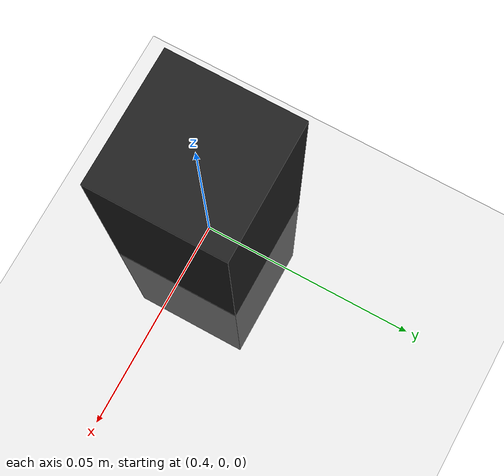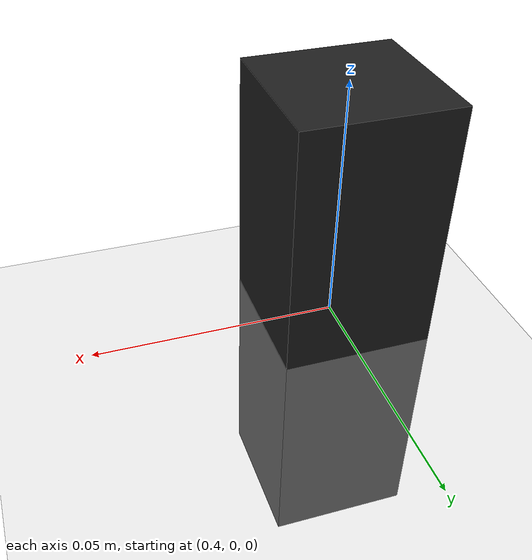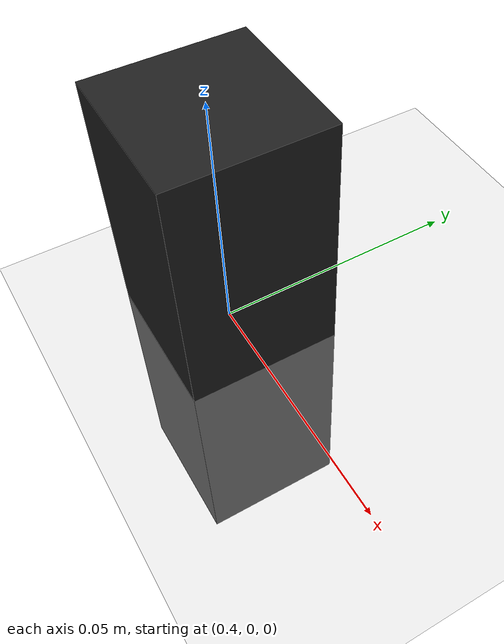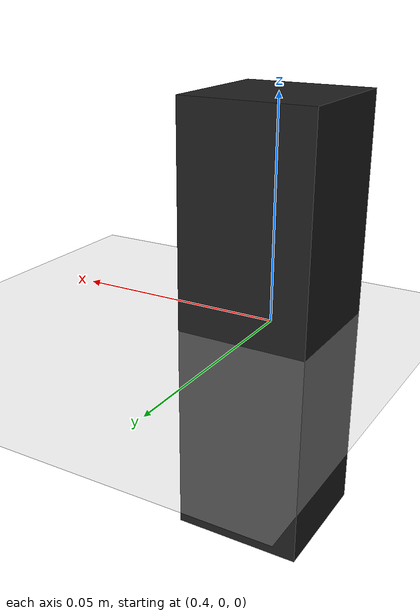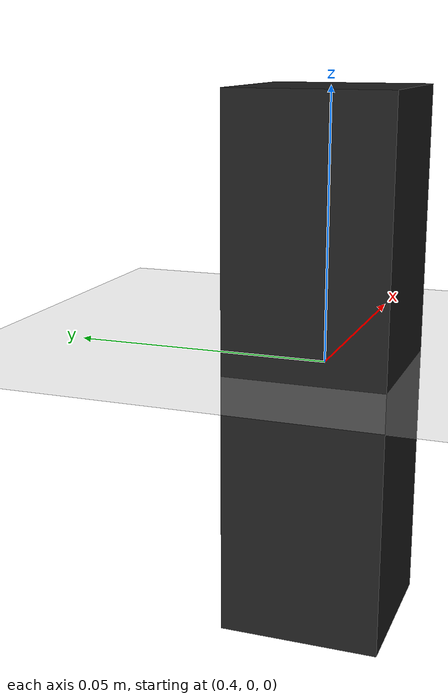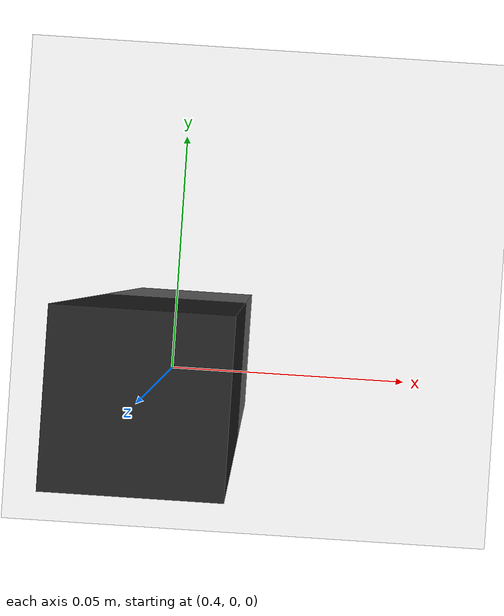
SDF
<sdf version="1.6">
 <world name="default">
  <light name="sun" type="directional">
   <pose>0 0 10 0 -0 0</pose>
   <diffuse>0.8 0.8 0.8 1</diffuse>
   <specular>0.2 0.2 0.2 1</specular>
   <attenuation>
    <range>1000</range>
    <constant>0.9</constant>
    <linear>0.01</linear>
    <quadratic>0.001</quadratic>
   </attenuation>
   <direction>-0.5 0.1 -0.9</direction>
  </light>
  <model name="ground_plane">
   <static>1</static>
   <link name="link">
    <collision name="collision">
     <geometry><plane><normal>0 0 1</normal><size>100 100</size></plane></geometry>
     <surface><friction><ode><mu>100</mu><mu2>50</mu2></ode></friction></surface>
    </collision>
    <visual name="visual">
     <cast_shadows>0</cast_shadows>
     <geometry><plane><normal>0 0 1</normal><size>100 100</size></plane></geometry>
     <material>
      <script><uri>file://media/materials/scripts/gazebo.material</uri><name>Gazebo/Grey</name></script>
     </material>
    </visual>
   </link>
  </model>
  <gravity>0 0 -9.8</gravity>
  <magnetic_field>6e-06 2.3e-05 -4.2e-05</magnetic_field>
  <atmosphere type="adiabatic"/>
  <physics name="default_physics" default="0" type="ode">
   <max_step_size>0.001</max_step_size>
   <real_time_factor>1</real_time_factor>
   <real_time_update_rate>1000</real_time_update_rate>
  </physics>
  <scene><ambient>0.4 0.4 0.4 1</ambient><background>0.7 0.7 0.7 1</background><shadows>1</shadows></scene>
  <spherical_coordinates>
   <surface_model>EARTH_WGS84</surface_model>
   <latitude_deg>0</latitude_deg>
   <longitude_deg>0</longitude_deg>
   <elevation>0</elevation>
   <heading_deg>0</heading_deg>
  </spherical_coordinates>
  <model name="box_black">
   <static>0</static>
   <link name="link">
    <inertial>
     <mass>0.1</mass>
     <inertia><ixx>0.07</ixx><ixy>0</ixy><iyy>0.07</iyy><ixz>0</ixz><iyz>0</iyz><izz>0.07</izz></inertia>
    </inertial>
    <collision name="collision">
     <geometry><box><size>0.03 0.03 0.1</size></box></geometry>
     <surface>
      <contact><ode><max_vel>0.1</max_vel><min_depth>0.001</min_depth></ode></contact>
      <friction><ode><mu>100</mu><mu2>50</mu2></ode></friction>
     </surface>
    </collision>
    <visual name="visual">
     <geometry><box><size>0.03 0.03 0.1</size></box></geometry>
     <material>
      <script><uri>file://media/materials/scripts/gazebo.material</uri><name>Gazebo/Black</name></script>
     </material>
    </visual>
   </link>
   <pose>0.4 0.0 0.0 0 0 -1e-06</pose>
  </model>
 </world>
</sdf>
